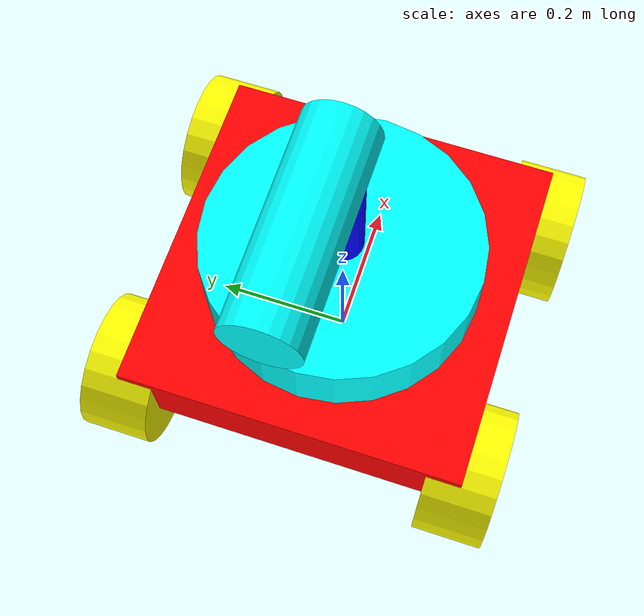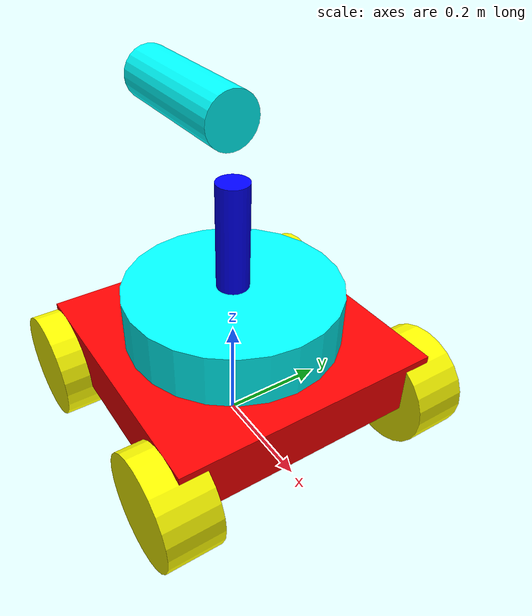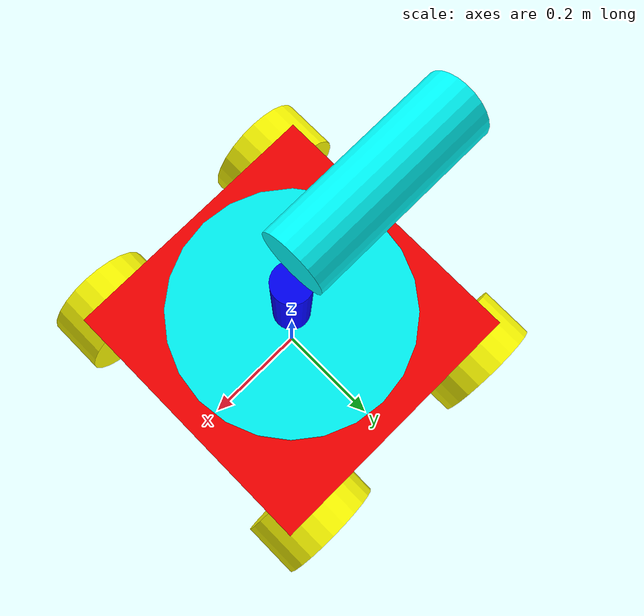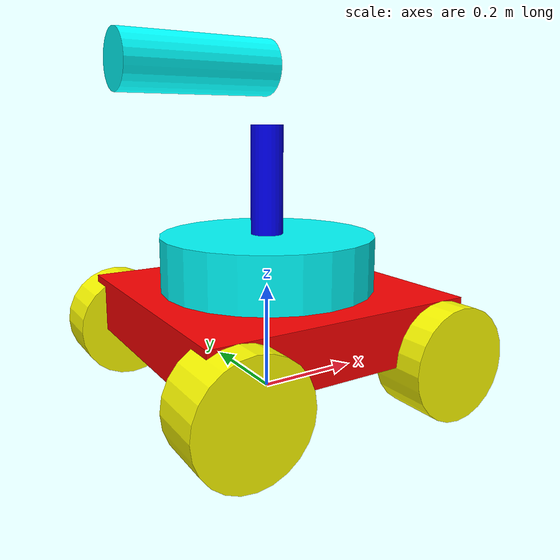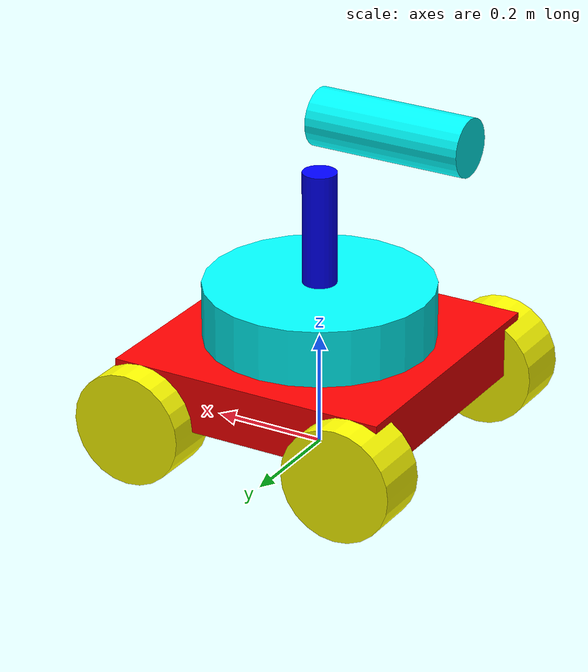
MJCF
<?xml version="1.0" encoding="utf-8"?>
<mujoco model="sentry_robot">
  <compiler angle="radian" coordinate="local"/>
  <option timestep="0.002"/>

  <worldbody>
    <body name="base_link" pos="0 0 0.15">
      <joint name="base_x" type="slide" axis="1 0 0" damping="10"/>
      <joint name="base_y" type="slide" axis="0 1 0" damping="10"/>
      <joint name="base_z" type="slide" axis="0 0 1" damping="10"/>
      <joint name="base_yaw" type="hinge" axis="0 0 1" damping="5"/>
      <!-- 占位惯性：整体约 10kg 底盘（含电机电池），按需调整 -->
      <inertial pos="0 0 0" mass="10" diaginertia="0.217 0.217 0.417"/>
      <geom name="base" type="box" size="0.25 0.25 0.05" rgba="1 0 0 1"/>

      <!-- 云台：bigyaw（绕 z） -->
      <body name="bigyaw_link" pos="0 0 0.1">
        <joint name="bigyaw_joint" axis="0 0 1" damping="1.0"/>
        <inertial pos="0 0 0" mass="1.0" diaginertia="0.011 0.011 0.02"/>
        <geom name="bigyaw" type="cylinder" size="0.2 0.05" rgba="0 1 1 1"/>

        <!-- 云台：small_yaw（绕 z） -->
        <body name="small_yaw_link" pos="0 0 0.1">
          <joint name="small_yaw_joint" axis="0 0 1" damping="0.5"/>
          <inertial pos="0 0 0" mass="0.2" diaginertia="0.0015 0.0015 0.0001"/>
          <geom name="small_yaw" type="cylinder" size="0.03 0.15" rgba="0 0 1 1"/>

          <!-- 云台：pitch（绕 y） -->
          <body name="pitch_link" pos="0 0 0.25">
            <joint name="pitch_joint" axis="0 1 0"/>
            <inertial pos="0 0 0" mass="0.3" diaginertia="0.0021 0.0021 0.0004"/>
            <geom name="pitch" type="cylinder" size="0.05 0.14" pos="-0.14 0 0"
                  quat="0.707105 0 0.707108 0" rgba="0 1 1 1"/>
          </body>
        </body>
      </body>

      <!-- 四个麦轮（绕 y 轴，半径 0.1） -->
      <body name="left_wheel_front_link" pos="-0.2 -0.25 -0.05">
        <joint name="left_wheel_front_joint" axis="0 1 0"/>
        <inertial pos="0 0 0" mass="0.5" diaginertia="0.0017 0.0017 0.0025"/>
        <geom name="left_wheel_front" type="cylinder" size="0.1 0.05"
              quat="0.707105 0.707108 0 0" rgba="1 1 0 1"/>
      </body>
      <body name="right_wheel_front_link" pos="-0.2 0.25 -0.05">
        <joint name="right_wheel_front_joint" axis="0 1 0"/>
        <inertial pos="0 0 0" mass="0.5" diaginertia="0.0017 0.0017 0.0025"/>
        <geom name="right_wheel_front" type="cylinder" size="0.1 0.05"
              quat="0.707105 0.707108 0 0" rgba="1 1 0 1"/>
      </body>
      <body name="left_wheel_back_link" pos="0.2 -0.25 -0.05">
        <joint name="left_wheel_back_joint" axis="0 1 0"/>
        <inertial pos="0 0 0" mass="0.5" diaginertia="0.0017 0.0017 0.0025"/>
        <geom name="left_wheel_back" type="cylinder" size="0.1 0.05"
              quat="0.707105 0.707108 0 0" rgba="1 1 0 1"/>
      </body>
      <body name="right_wheel_back_link" pos="0.2 0.25 -0.05">
        <joint name="right_wheel_back_joint" axis="0 1 0"/>
        <inertial pos="0 0 0" mass="0.5" diaginertia="0.0017 0.0017 0.0025"/>
        <geom name="right_wheel_back" type="cylinder" size="0.1 0.05"
              quat="0.707105 0.707108 0 0" rgba="1 1 0 1"/>
      </body>
    </body>
  </worldbody>

  <!-- ============ 执行器：全用 motor（力矩/effort 控制，对应你的 effort 指令链） ============
       数量 = 7，与 URDF ros2_control 的 7 个关节一一对应；
       ctrlrange 是力矩限幅（云台 ±10 N·m，轮子 ±30 N·m），按需调整。 -->
  <actuator>
    <motor name="bigyaw_motor"     joint="bigyaw_joint"          ctrlrange="-10 10"/>
    <motor name="small_yaw_motor"  joint="small_yaw_joint"       ctrlrange="-10 10"/>
    <motor name="pitch_motor"      joint="pitch_joint"           ctrlrange="-10 10"/>
    <motor name="left_wheel_front_motor"  joint="left_wheel_front_joint"  ctrlrange="-30 30"/>
    <motor name="right_wheel_front_motor" joint="right_wheel_front_joint" ctrlrange="-30 30"/>
    <motor name="left_wheel_back_motor"   joint="left_wheel_back_joint"   ctrlrange="-30 30"/>
    <motor name="right_wheel_back_motor"  joint="right_wheel_back_joint"  ctrlrange="-30 30"/>
  </actuator>
</mujoco>
